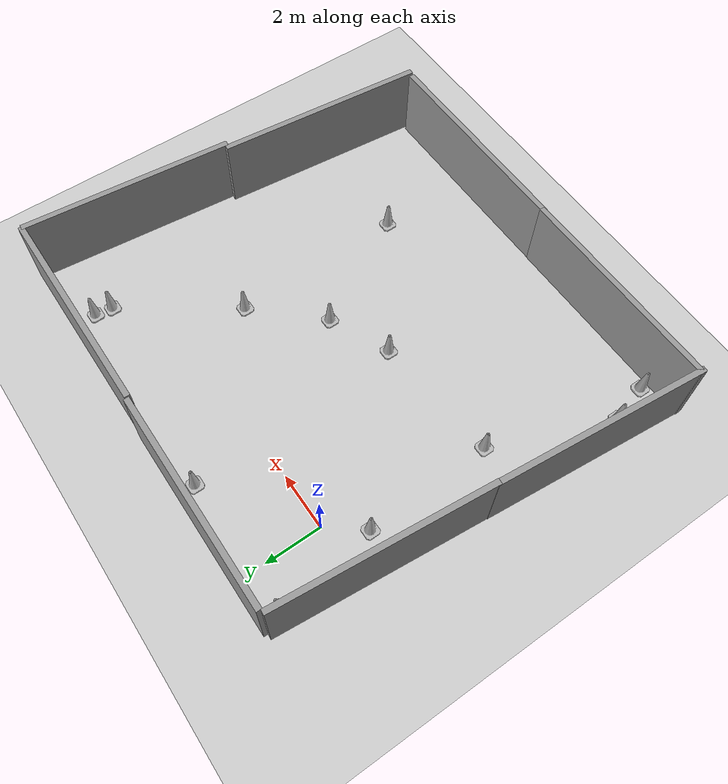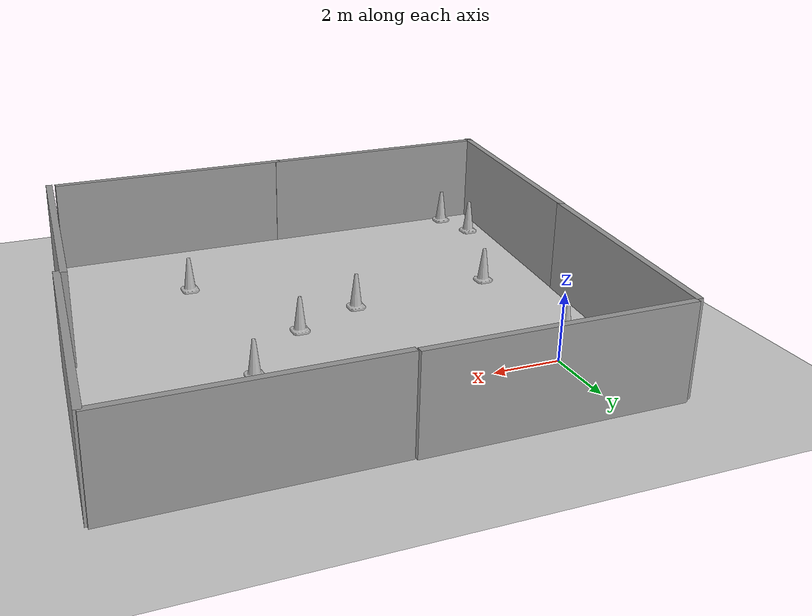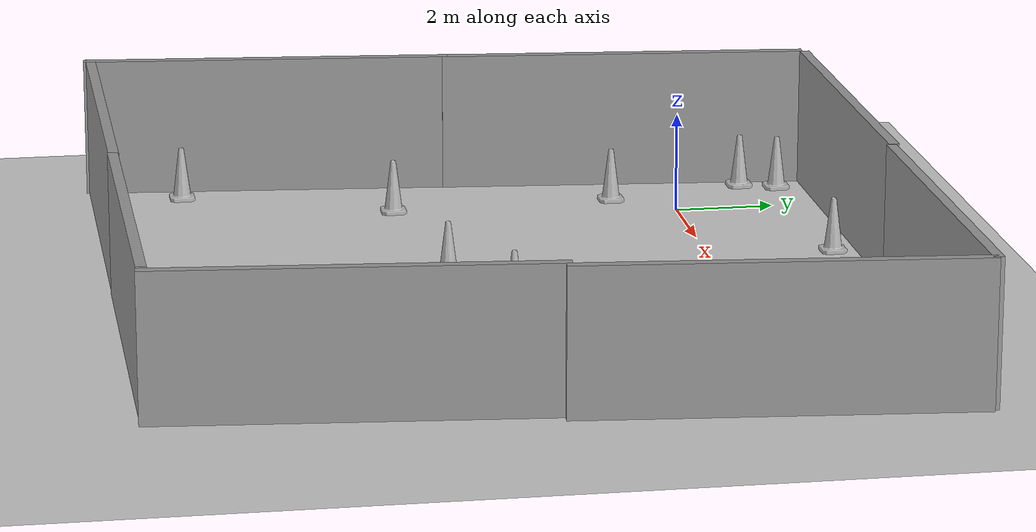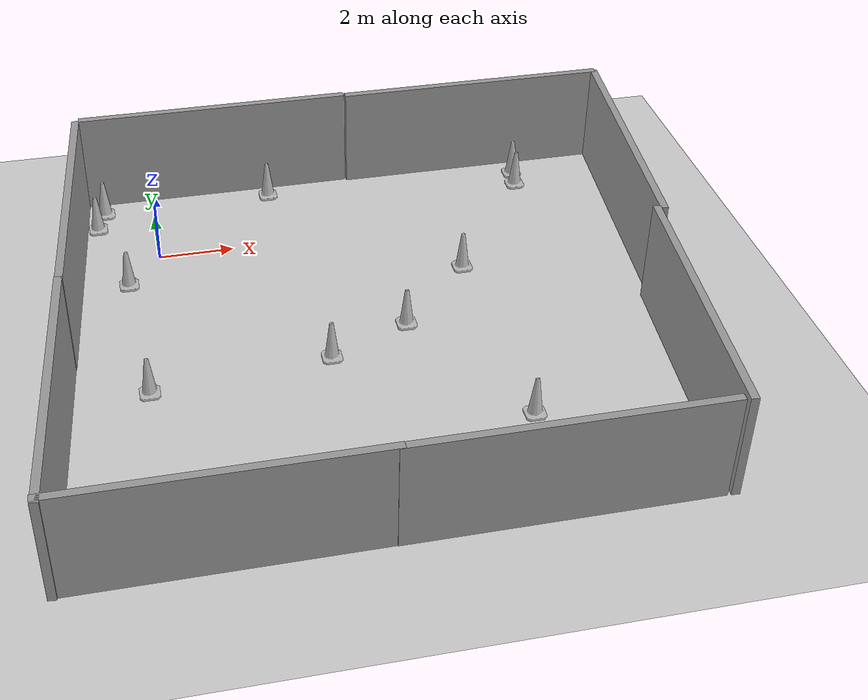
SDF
<sdf version="1.7">
 <world name="default">
  <light name="sun" type="directional">
   <pose>0 0 10 0 -0 0</pose>
   <diffuse>0.8 0.8 0.8 1</diffuse>
   <specular>0.2 0.2 0.2 1</specular>
   <attenuation>
    <range>1000</range>
    <constant>0.9</constant>
    <linear>0.01</linear>
    <quadratic>0.001</quadratic>
   </attenuation>
   <direction>-0.5 0.1 -0.9</direction>
   <spot><inner_angle>0</inner_angle><outer_angle>0</outer_angle><falloff>0</falloff></spot>
  </light>
  <model name="ground_plane">
   <static>1</static>
   <link name="link">
    <collision name="collision">
     <geometry><plane><normal>0 0 1</normal><size>100 100</size></plane></geometry>
     <surface>
      <contact><collide_bitmask>65535</collide_bitmask></contact>
      <friction><ode><mu>100</mu><mu2>50</mu2></ode></friction>
     </surface>
    </collision>
    <visual name="visual">
     <cast_shadows>0</cast_shadows>
     <geometry><plane><normal>0 0 1</normal><size>100 100</size></plane></geometry>
     <material>
      <script><uri>file://media/materials/scripts/gazebo.material</uri><name>Gazebo/Grey</name></script>
     </material>
    </visual>
   </link>
  </model>
  <gravity>0 0 -9.8</gravity>
  <magnetic_field>6e-06 2.3e-05 -4.2e-05</magnetic_field>
  <atmosphere type="adiabatic"/>
  <physics type="ode">
   <max_step_size>0.001</max_step_size>
   <real_time_factor>1</real_time_factor>
   <real_time_update_rate>1000</real_time_update_rate>
  </physics>
  <scene><ambient>0.4 0.4 0.4 1</ambient><background>0.7 0.7 0.7 1</background><shadows>1</shadows></scene>
  <audio><device>default</device></audio>
  <spherical_coordinates>
   <surface_model>EARTH_WGS84</surface_model>
   <latitude_deg>0</latitude_deg>
   <longitude_deg>0</longitude_deg>
   <elevation>0</elevation>
   <heading_deg>0</heading_deg>
  </spherical_coordinates>
  <model name="grey_wall">
   <static>1</static>
   <link name="link">
    <pose>0 0 1.4 0 -0 0</pose>
    <collision name="collision"><geometry><box><size>7.5 0.2 2.8</size></box></geometry></collision>
    <visual name="visual">
     <cast_shadows>0</cast_shadows>
     <geometry><box><size>7.5 0.2 2.8</size></box></geometry>
     <material>
      <script>
       <uri>model://grey_wall/materials/scripts</uri>
       <uri>model://grey_wall/materials/textures</uri>
       <name>vrc/grey_wall</name>
      </script>
     </material>
    </visual>
   </link>
   <pose>1.97273 3.0413 0 0 -0 0</pose>
  </model>
  <model name="grey_wall_clone">
   <static>1</static>
   <link name="link">
    <pose>0 0 1.4 0 -0 0</pose>
    <collision name="collision"><geometry><box><size>7.5 0.2 2.8</size></box></geometry></collision>
    <visual name="visual">
     <cast_shadows>0</cast_shadows>
     <geometry><box><size>7.5 0.2 2.8</size></box></geometry>
     <material>
      <script>
       <uri>model://grey_wall/materials/scripts</uri>
       <uri>model://grey_wall/materials/textures</uri>
       <name>vrc/grey_wall</name>
      </script>
     </material>
    </visual>
   </link>
   <pose>9.51106 2.98143 0 0 -0 0</pose>
  </model>
  <model name="grey_wall_clone_0">
   <static>1</static>
   <link name="link">
    <pose>0 0 1.4 0 -0 0</pose>
    <collision name="collision"><geometry><box><size>7.5 0.2 2.8</size></box></geometry></collision>
    <visual name="visual">
     <cast_shadows>0</cast_shadows>
     <geometry><box><size>7.5 0.2 2.8</size></box></geometry>
     <material>
      <script>
       <uri>model://grey_wall/materials/scripts</uri>
       <uri>model://grey_wall/materials/textures</uri>
       <name>vrc/grey_wall</name>
      </script>
     </material>
    </visual>
   </link>
   <pose>-2.20426 -0.728746 0 0 -0 1.47943</pose>
  </model>
  <model name="grey_wall_clone_0_clone">
   <static>1</static>
   <link name="link">
    <pose>0 0 1.4 0 -0 0</pose>
    <collision name="collision"><geometry><box><size>7.5 0.2 2.8</size></box></geometry></collision>
    <visual name="visual">
     <cast_shadows>0</cast_shadows>
     <geometry><box><size>7.5 0.2 2.8</size></box></geometry>
     <material>
      <script>
       <uri>model://grey_wall/materials/scripts</uri>
       <uri>model://grey_wall/materials/textures</uri>
       <name>vrc/grey_wall</name>
      </script>
     </material>
    </visual>
   </link>
   <pose>-2.89244 -8.08915 0 0 -0 1.47943</pose>
  </model>
  <model name="grey_wall_clone_clone">
   <static>1</static>
   <link name="link">
    <pose>0 0 1.4 0 -0 0</pose>
    <collision name="collision"><geometry><box><size>7.5 0.2 2.8</size></box></geometry></collision>
    <visual name="visual">
     <cast_shadows>0</cast_shadows>
     <geometry><box><size>7.5 0.2 2.8</size></box></geometry>
     <material>
      <script>
       <uri>model://grey_wall/materials/scripts</uri>
       <uri>model://grey_wall/materials/textures</uri>
       <name>vrc/grey_wall</name>
      </script>
     </material>
    </visual>
   </link>
   <pose>0.41537 -11.6804 0 0 -0 0</pose>
  </model>
  <model name="grey_wall_clone_clone_clone">
   <static>1</static>
   <link name="link">
    <pose>0 0 1.4 0 -0 0</pose>
    <collision name="collision"><geometry><box><size>7.5 0.2 2.8</size></box></geometry></collision>
    <visual name="visual">
     <cast_shadows>0</cast_shadows>
     <geometry><box><size>7.5 0.2 2.8</size></box></geometry>
     <material>
      <script>
       <uri>model://grey_wall/materials/scripts</uri>
       <uri>model://grey_wall/materials/textures</uri>
       <name>vrc/grey_wall</name>
      </script>
     </material>
    </visual>
   </link>
   <pose>7.77027 -11.6943 0 0 -0 0</pose>
  </model>
  <model name="grey_wall_clone_0_clone_clone">
   <static>1</static>
   <link name="link">
    <pose>0 0 1.4 0 -0 0</pose>
    <collision name="collision"><geometry><box><size>7.5 0.2 2.8</size></box></geometry></collision>
    <visual name="visual">
     <cast_shadows>0</cast_shadows>
     <geometry><box><size>7.5 0.2 2.8</size></box></geometry>
     <material>
      <script>
       <uri>model://grey_wall/materials/scripts</uri>
       <uri>model://grey_wall/materials/textures</uri>
       <name>vrc/grey_wall</name>
      </script>
     </material>
    </visual>
   </link>
   <pose>12.8888 -0.740574 0 0 -0 1.47943</pose>
  </model>
  <model name="grey_wall_clone_0_clone_clone_clone">
   <static>1</static>
   <link name="link">
    <pose>0 0 1.4 0 -0 0</pose>
    <collision name="collision"><geometry><box><size>7.5 0.2 2.8</size></box></geometry></collision>
    <visual name="visual">
     <cast_shadows>0</cast_shadows>
     <geometry><box><size>7.5 0.2 2.8</size></box></geometry>
     <material>
      <script>
       <uri>model://grey_wall/materials/scripts</uri>
       <uri>model://grey_wall/materials/textures</uri>
       <name>vrc/grey_wall</name>
      </script>
     </material>
    </visual>
   </link>
   <pose>12.0394 -8.07772 0 0 -0 1.47943</pose>
  </model>
  <model name="Construction Cone">
   <link name="link">
    <collision name="collision">
     <geometry>
      <mesh><scale>10 10 10</scale><uri>model://construction_cone/meshes/construction_cone.dae</uri></mesh>
     </geometry>
    </collision>
    <visual name="visual">
     <geometry>
      <mesh><scale>10 10 10</scale><uri>model://construction_cone/meshes/construction_cone.dae</uri></mesh>
     </geometry>
    </visual>
    <inertial>
     <inertia><ixx>1</ixx><ixy>0</ixy><ixz>0</ixz><iyy>1</iyy><iyz>0</iyz><izz>1</izz></inertia>
     <mass>1</mass>
    </inertial>
   </link>
   <pose>-1.34672 2.39365 -0 0 -0 0</pose>
  </model>
  <model name="Construction Cone_clone">
   <link name="link">
    <collision name="collision">
     <geometry>
      <mesh><scale>10 10 10</scale><uri>model://construction_cone/meshes/construction_cone.dae</uri></mesh>
     </geometry>
    </collision>
    <visual name="visual">
     <geometry>
      <mesh><scale>10 10 10</scale><uri>model://construction_cone/meshes/construction_cone.dae</uri></mesh>
     </geometry>
    </visual>
    <inertial>
     <inertia><ixx>1</ixx><ixy>0</ixy><ixz>0</ixz><iyy>1</iyy><iyz>0</iyz><izz>1</izz></inertia>
     <mass>1</mass>
    </inertial>
   </link>
   <pose>-1.59566 1.65677 -0 0 -0 0</pose>
  </model>
  <model name="Construction Cone_clone_0">
   <link name="link">
    <collision name="collision">
     <geometry>
      <mesh><scale>10 10 10</scale><uri>model://construction_cone/meshes/construction_cone.dae</uri></mesh>
     </geometry>
    </collision>
    <visual name="visual">
     <geometry>
      <mesh><scale>10 10 10</scale><uri>model://construction_cone/meshes/construction_cone.dae</uri></mesh>
     </geometry>
    </visual>
    <inertial>
     <inertia><ixx>1</ixx><ixy>0</ixy><ixz>0</ixz><iyy>1</iyy><iyz>0</iyz><izz>1</izz></inertia>
     <mass>1</mass>
    </inertial>
   </link>
   <pose>-2.00278 -11.281 -0 0 -0 0</pose>
  </model>
  <model name="Construction Cone_clone_1">
   <link name="link">
    <collision name="collision">
     <geometry>
      <mesh><scale>10 10 10</scale><uri>model://construction_cone/meshes/construction_cone.dae</uri></mesh>
     </geometry>
    </collision>
    <visual name="visual">
     <geometry>
      <mesh><scale>10 10 10</scale><uri>model://construction_cone/meshes/construction_cone.dae</uri></mesh>
     </geometry>
    </visual>
    <inertial>
     <inertia><ixx>1</ixx><ixy>0</ixy><ixz>0</ixz><iyy>1</iyy><iyz>0</iyz><izz>1</izz></inertia>
     <mass>1</mass>
    </inertial>
   </link>
   <pose>-2.40369 -9.91691 -0 0 -0 0</pose>
  </model>
  <model name="Construction Cone_clone_2">
   <link name="link">
    <collision name="collision">
     <geometry>
      <mesh><scale>10 10 10</scale><uri>model://construction_cone/meshes/construction_cone.dae</uri></mesh>
     </geometry>
    </collision>
    <visual name="visual">
     <geometry>
      <mesh><scale>10 10 10</scale><uri>model://construction_cone/meshes/construction_cone.dae</uri></mesh>
     </geometry>
    </visual>
    <inertial>
     <inertia><ixx>1</ixx><ixy>0</ixy><ixz>0</ixz><iyy>1</iyy><iyz>0</iyz><izz>1</izz></inertia>
     <mass>1</mass>
    </inertial>
   </link>
   <pose>10.6531 2.22796 -0 1e-06 -0 0</pose>
  </model>
  <model name="Construction Cone_clone_3">
   <link name="link">
    <collision name="collision">
     <geometry>
      <mesh><scale>10 10 10</scale><uri>model://construction_cone/meshes/construction_cone.dae</uri></mesh>
     </geometry>
    </collision>
    <visual name="visual">
     <geometry>
      <mesh><scale>10 10 10</scale><uri>model://construction_cone/meshes/construction_cone.dae</uri></mesh>
     </geometry>
    </visual>
    <inertial>
     <inertia><ixx>1</ixx><ixy>0</ixy><ixz>0</ixz><iyy>1</iyy><iyz>0</iyz><izz>1</izz></inertia>
     <mass>1</mass>
    </inertial>
   </link>
   <pose>10.5746 1.62034 -1e-06 2e-06 2e-06 0</pose>
  </model>
  <model name="Construction Cone_clone_4">
   <link name="link">
    <collision name="collision">
     <geometry>
      <mesh><scale>10 10 10</scale><uri>model://construction_cone/meshes/construction_cone.dae</uri></mesh>
     </geometry>
    </collision>
    <visual name="visual">
     <geometry>
      <mesh><scale>10 10 10</scale><uri>model://construction_cone/meshes/construction_cone.dae</uri></mesh>
     </geometry>
    </visual>
    <inertial>
     <inertia><ixx>1</ixx><ixy>0</ixy><ixz>0</ixz><iyy>1</iyy><iyz>0</iyz><izz>1</izz></inertia>
     <mass>1</mass>
    </inertial>
   </link>
   <pose>5.93256 -4.31092 -0 0 -0 0</pose>
  </model>
  <model name="Construction Cone_clone_5">
   <link name="link">
    <collision name="collision">
     <geometry>
      <mesh><scale>10 10 10</scale><uri>model://construction_cone/meshes/construction_cone.dae</uri></mesh>
     </geometry>
    </collision>
    <visual name="visual">
     <geometry>
      <mesh><scale>10 10 10</scale><uri>model://construction_cone/meshes/construction_cone.dae</uri></mesh>
     </geometry>
    </visual>
    <inertial>
     <inertia><ixx>1</ixx><ixy>0</ixy><ixz>0</ixz><iyy>1</iyy><iyz>0</iyz><izz>1</izz></inertia>
     <mass>1</mass>
    </inertial>
   </link>
   <pose>7.97876 -2.15673 -1e-05 -1e-06 0 0</pose>
  </model>
  <model name="Construction Cone_clone_6">
   <link name="link">
    <collision name="collision">
     <geometry>
      <mesh><scale>10 10 10</scale><uri>model://construction_cone/meshes/construction_cone.dae</uri></mesh>
     </geometry>
    </collision>
    <visual name="visual">
     <geometry>
      <mesh><scale>10 10 10</scale><uri>model://construction_cone/meshes/construction_cone.dae</uri></mesh>
     </geometry>
    </visual>
    <inertial>
     <inertia><ixx>1</ixx><ixy>0</ixy><ixz>0</ixz><iyy>1</iyy><iyz>0</iyz><izz>1</izz></inertia>
     <mass>1</mass>
    </inertial>
   </link>
   <pose>8.13591 -8.31956 -0 0 -0 0</pose>
  </model>
  <model name="Construction Cone_clone_7">
   <link name="link">
    <collision name="collision">
     <geometry>
      <mesh><scale>10 10 10</scale><uri>model://construction_cone/meshes/construction_cone.dae</uri></mesh>
     </geometry>
    </collision>
    <visual name="visual">
     <geometry>
      <mesh><scale>10 10 10</scale><uri>model://construction_cone/meshes/construction_cone.dae</uri></mesh>
     </geometry>
    </visual>
    <inertial>
     <inertia><ixx>1</ixx><ixy>0</ixy><ixz>0</ixz><iyy>1</iyy><iyz>0</iyz><izz>1</izz></inertia>
     <mass>1</mass>
    </inertial>
   </link>
   <pose>-0.752267 -5.73337 -0 1e-06 -0 0</pose>
  </model>
  <model name="Construction Cone_clone_8">
   <link name="link">
    <collision name="collision">
     <geometry>
      <mesh><scale>10 10 10</scale><uri>model://construction_cone/meshes/construction_cone.dae</uri></mesh>
     </geometry>
    </collision>
    <visual name="visual">
     <geometry>
      <mesh><scale>10 10 10</scale><uri>model://construction_cone/meshes/construction_cone.dae</uri></mesh>
     </geometry>
    </visual>
    <inertial>
     <inertia><ixx>1</ixx><ixy>0</ixy><ixz>0</ixz><iyy>1</iyy><iyz>0</iyz><izz>1</izz></inertia>
     <mass>1</mass>
    </inertial>
   </link>
   <pose>3.80639 -5.26406 -0 0 -0 0</pose>
  </model>
  <model name="Construction Cone_clone_9">
   <link name="link">
    <collision name="collision">
     <geometry>
      <mesh><scale>10 10 10</scale><uri>model://construction_cone/meshes/construction_cone.dae</uri></mesh>
     </geometry>
    </collision>
    <visual name="visual">
     <geometry>
      <mesh><scale>10 10 10</scale><uri>model://construction_cone/meshes/construction_cone.dae</uri></mesh>
     </geometry>
    </visual>
    <inertial>
     <inertia><ixx>1</ixx><ixy>0</ixy><ixz>0</ixz><iyy>1</iyy><iyz>0</iyz><izz>1</izz></inertia>
     <mass>1</mass>
    </inertial>
   </link>
   <pose>3.34474 2.4815 -0 1e-06 -0 0</pose>
  </model>
  <model name="Construction Cone_clone_10">
   <link name="link">
    <collision name="collision">
     <geometry>
      <mesh><scale>10 10 10</scale><uri>model://construction_cone/meshes/construction_cone.dae</uri></mesh>
     </geometry>
    </collision>
    <visual name="visual">
     <geometry>
      <mesh><scale>10 10 10</scale><uri>model://construction_cone/meshes/construction_cone.dae</uri></mesh>
     </geometry>
    </visual>
    <inertial>
     <inertia><ixx>1</ixx><ixy>0</ixy><ixz>0</ixz><iyy>1</iyy><iyz>0</iyz><izz>1</izz></inertia>
     <mass>1</mass>
    </inertial>
   </link>
   <pose>-0.931203 -1.19003 -0 0 -0 0</pose>
  </model>
 </world>
</sdf>
